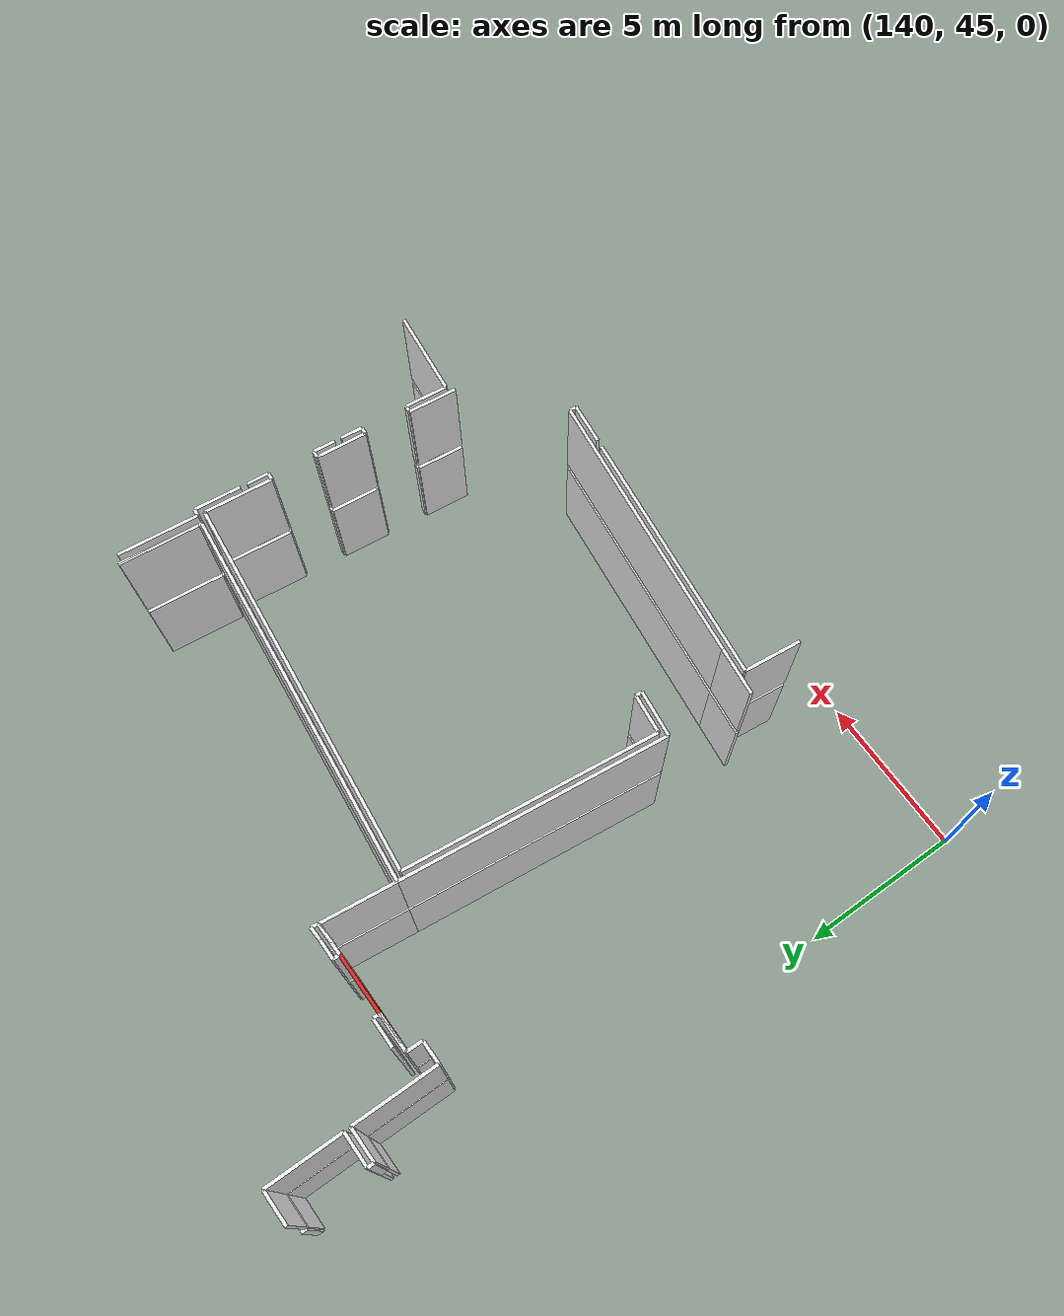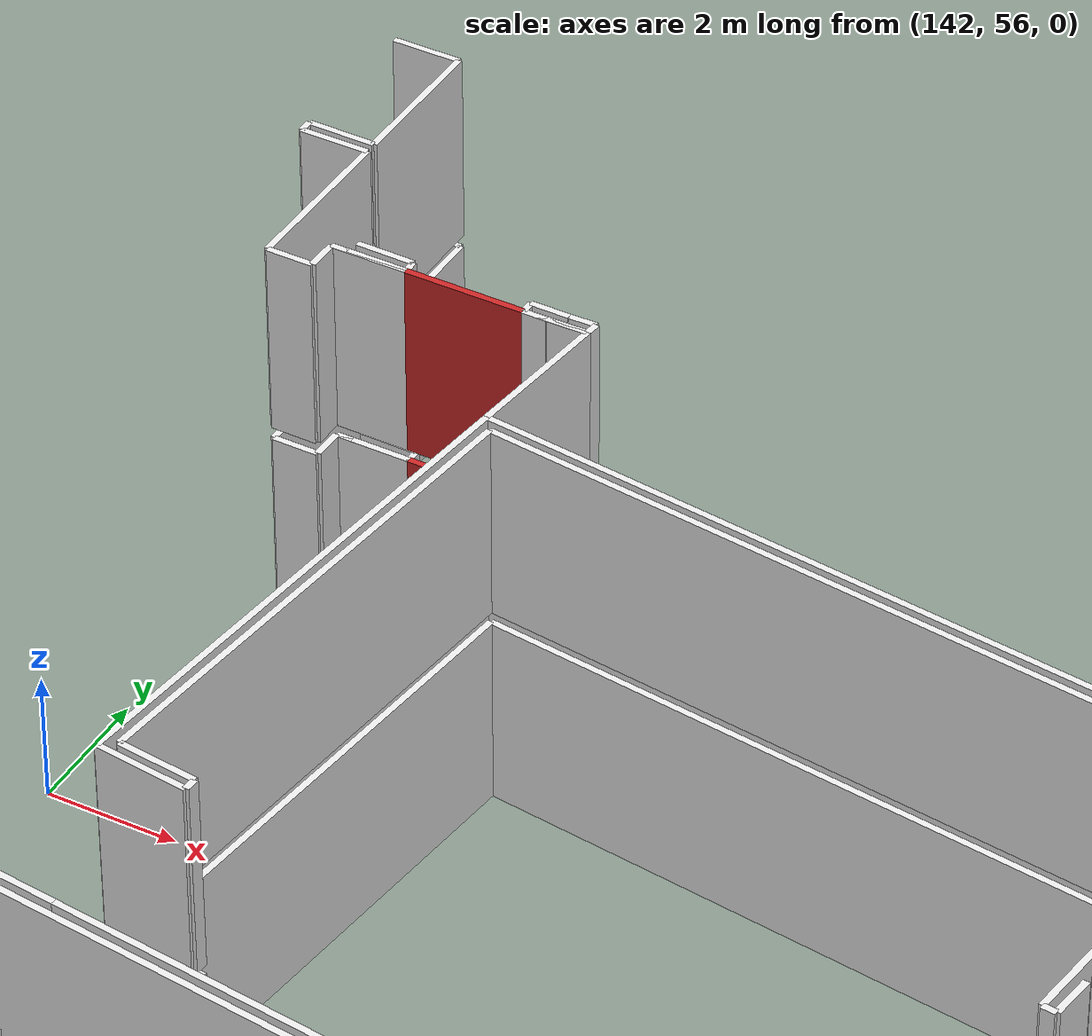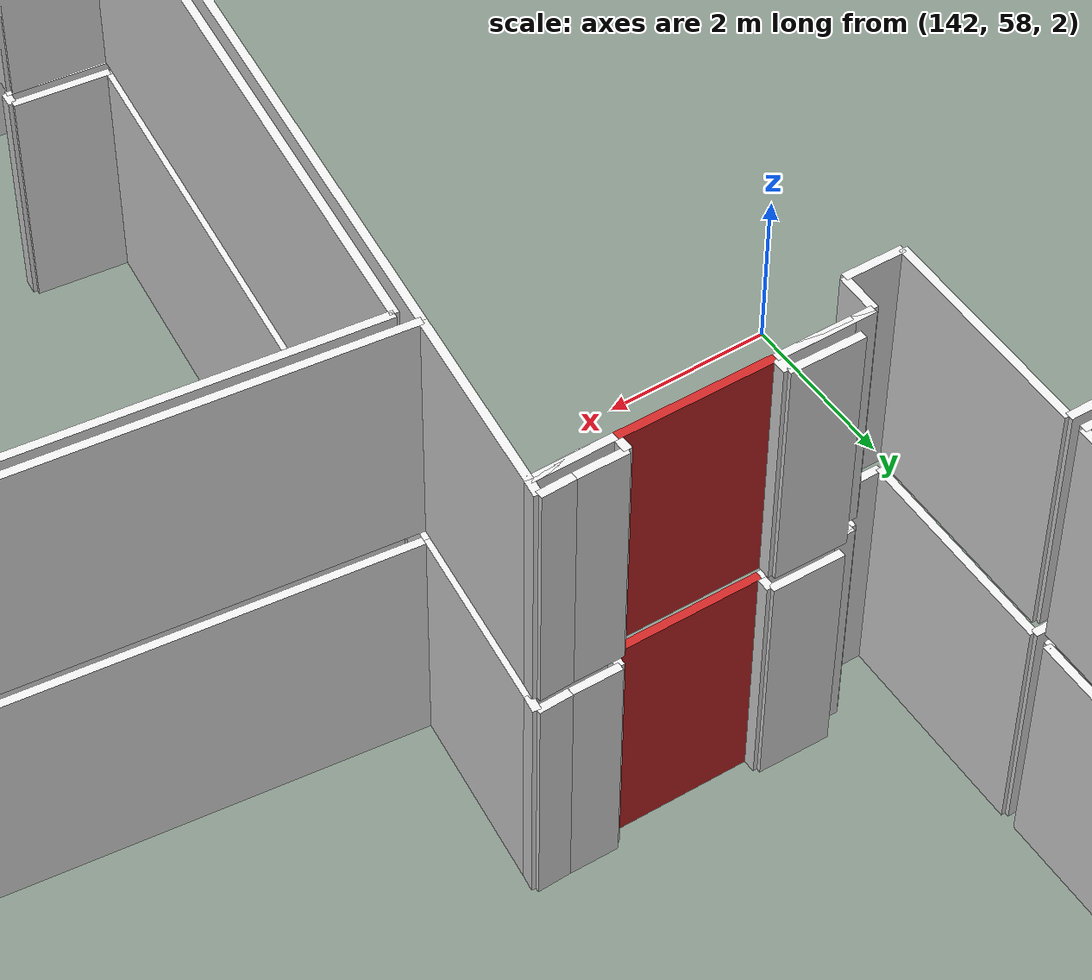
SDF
<sdf version="1.6">
 <world name="default">
  <model name="wall_145.4_61.4_0.0">
   <static>true</static>
   <pose>145.44999999998254 61.360000000102445 1.5 0 0 -0.011110653908026076</pose>
   <link name="link">
    <visual name="visual">
     <geometry><box><size>1.8001111076705336 0.1 3</size></box></geometry>
     <material>
      <script><uri>file://media/materials/scripts/gazebo.material</uri><name>Gazebo/Red</name></script>
     </material>
    </visual>
   </link>
  </model>
  <model name="wall_146.2_47.7_0.0">
   <static>true</static>
   <pose>146.20999999999185 47.675000000046566 1.5 0 0 1.4530010049136584</pose>
   <link name="link">
    <visual name="visual">
     <geometry><box><size>1.7017931718677757 0.1 3</size></box></geometry>
     <material>
      <script><uri>file://media/materials/scripts/gazebo.material</uri><name>Gazebo/White</name></script>
     </material>
    </visual>
   </link>
  </model>
  <model name="wall_150.1_48.1_0.0">
   <static>true</static>
   <pose>150.08499999999185 48.06499999994412 1.5 0 0 -0.11995117374483057</pose>
   <link name="link">
    <visual name="visual">
     <geometry><box><size>7.604643318400634 0.1 3</size></box></geometry>
     <material>
      <script><uri>file://media/materials/scripts/gazebo.material</uri><name>Gazebo/White</name></script>
     </material>
    </visual>
   </link>
  </model>
  <model name="wall_155.3_47.5_0.0">
   <static>true</static>
   <pose>155.27000000001863 47.54000000003725 1.5 0 0 1.4711276743037347</pose>
   <link name="link">
    <visual name="visual">
     <geometry><box><size>0.20099751260961132 0.1 3</size></box></geometry>
     <material>
      <script><uri>file://media/materials/scripts/gazebo.material</uri><name>Gazebo/White</name></script>
     </material>
    </visual>
   </link>
  </model>
  <model name="wall_151.2_48.1_0.0">
   <static>true</static>
   <pose>151.21000000002095 48.13000000012107 1.5 0 0 3.021776205795211</pose>
   <link name="link">
    <visual name="visual">
     <geometry><box><size>8.198780397119496 0.1 3</size></box></geometry>
     <material>
      <script><uri>file://media/materials/scripts/gazebo.material</uri><name>Gazebo/White</name></script>
     </material>
    </visual>
   </link>
  </model>
  <model name="wall_147.5_51.2_0.0">
   <static>true</static>
   <pose>147.45000000001164 51.175000000046566 1.5 0 0 1.4659193879370842</pose>
   <link name="link">
    <visual name="visual">
     <geometry><box><size>0.19104973169180559 0.1 3</size></box></geometry>
     <material>
      <script><uri>file://media/materials/scripts/gazebo.material</uri><name>Gazebo/White</name></script>
     </material>
    </visual>
   </link>
  </model>
  <model name="wall_146.9_51.3_0.0">
   <static>true</static>
   <pose>146.88000000000466 51.34000000008382 1.5 0 0 3.0214839179154356</pose>
   <link name="link">
    <visual name="visual">
     <geometry><box><size>1.1684177335662667 0.1 3</size></box></geometry>
     <material>
      <script><uri>file://media/materials/scripts/gazebo.material</uri><name>Gazebo/White</name></script>
     </material>
    </visual>
   </link>
  </model>
  <model name="wall_146.8_55.2_0.0">
   <static>true</static>
   <pose>146.75500000000466 55.16500000003725 1.5 0 0 1.4502124243818328</pose>
   <link name="link">
    <visual name="visual">
     <geometry><box><size>7.564932253279079 0.1 3</size></box></geometry>
     <material>
      <script><uri>file://media/materials/scripts/gazebo.material</uri><name>Gazebo/White</name></script>
     </material>
    </visual>
   </link>
  </model>
  <model name="wall_152.9_58.2_0.0">
   <static>true</static>
   <pose>152.92500000001746 58.22999999998137 1.5 0 0 -0.12015333859032509</pose>
   <link name="link">
    <visual name="visual">
     <geometry><box><size>11.513005689199145 0.1 3</size></box></geometry>
     <material>
      <script><uri>file://media/materials/scripts/gazebo.material</uri><name>Gazebo/White</name></script>
     </material>
    </visual>
   </link>
  </model>
  <model name="wall_158.5_56.5_0.0">
   <static>true</static>
   <pose>158.51500000001397 56.53000000002794 1.5 0 0 -1.6939325529007196</pose>
   <link name="link">
    <visual name="visual">
     <geometry><box><size>2.0354115063237828 0.1 3</size></box></geometry>
     <material>
      <script><uri>file://media/materials/scripts/gazebo.material</uri><name>Gazebo/White</name></script>
     </material>
    </visual>
   </link>
  </model>
  <model name="wall_158.5_55.5_0.0">
   <static>true</static>
   <pose>158.49499999999534 55.50500000012107 1.5 0 0 -0.14189705367284136</pose>
   <link name="link">
    <visual name="visual">
     <geometry><box><size>0.2121320342901098 0.1 3</size></box></geometry>
     <material>
      <script><uri>file://media/materials/scripts/gazebo.material</uri><name>Gazebo/White</name></script>
     </material>
    </visual>
   </link>
  </model>
  <model name="wall_158.3_54.1_0.0">
   <static>true</static>
   <pose>158.3299999999872 54.11999999987893 1.5 0 0 3.0419240010121844</pose>
   <link name="link">
    <visual name="visual">
     <geometry><box><size>0.20099751243585498 0.1 3</size></box></geometry>
     <material>
      <script><uri>file://media/materials/scripts/gazebo.material</uri><name>Gazebo/White</name></script>
     </material>
    </visual>
   </link>
  </model>
  <model name="wall_158.1_53.4_0.0">
   <static>true</static>
   <pose>158.13999999998487 53.389999999897555 1.5 0 0 -1.6918235466009592</pose>
   <link name="link">
    <visual name="visual">
     <geometry><box><size>1.4909057649436974 0.1 3</size></box></geometry>
     <material>
      <script><uri>file://media/materials/scripts/gazebo.material</uri><name>Gazebo/White</name></script>
     </material>
    </visual>
   </link>
  </model>
  <model name="wall_158.1_52.6_0.0">
   <static>true</static>
   <pose>158.14999999999418 52.639999999897555 1.5 0 0 -0.09966865257760905</pose>
   <link name="link">
    <visual name="visual">
     <geometry><box><size>0.20099751243585498 0.1 3</size></box></geometry>
     <material>
      <script><uri>file://media/materials/scripts/gazebo.material</uri><name>Gazebo/White</name></script>
     </material>
    </visual>
   </link>
  </model>
  <model name="wall_158.0_51.3_0.0">
   <static>true</static>
   <pose>157.98500000001513 51.26000000000931 1.5 0 0 3.0367157147638757</pose>
   <link name="link">
    <visual name="visual">
     <geometry><box><size>0.19104973174969345 0.1 3</size></box></geometry>
     <material>
      <script><uri>file://media/materials/scripts/gazebo.material</uri><name>Gazebo/White</name></script>
     </material>
    </visual>
   </link>
  </model>
  <model name="wall_157.8_50.6_0.0">
   <static>true</static>
   <pose>157.80000000001746 50.55499999993481 1.5 0 0 -1.6960119063078065</pose>
   <link name="link">
    <visual name="visual">
     <geometry><box><size>1.4412841498042397 0.1 3</size></box></geometry>
     <material>
      <script><uri>file://media/materials/scripts/gazebo.material</uri><name>Gazebo/White</name></script>
     </material>
    </visual>
   </link>
  </model>
  <model name="wall_158.0_50.6_0.0">
   <static>true</static>
   <pose>158.00500000000466 50.62999999988824 1.5 0 0 -1.6911791475924711</pose>
   <link name="link">
    <visual name="visual">
     <geometry><box><size>1.2490396313013081 0.1 3</size></box></geometry>
     <material>
      <script><uri>file://media/materials/scripts/gazebo.material</uri><name>Gazebo/White</name></script>
     </material>
    </visual>
   </link>
  </model>
  <model name="wall_159.2_49.9_0.0">
   <static>true</static>
   <pose>159.1699999999837 49.86499999999069 1.5 0 0 -0.11640682593514659</pose>
   <link name="link">
    <visual name="visual">
     <geometry><box><size>2.4968980755447623 0.1 3</size></box></geometry>
     <material>
      <script><uri>file://media/materials/scripts/gazebo.material</uri><name>Gazebo/White</name></script>
     </material>
    </visual>
   </link>
  </model>
  <model name="wall_158.3_52.9_0.0">
   <static>true</static>
   <pose>158.29000000000815 52.949999999953434 1.5 0 0 -1.695151321341658</pose>
   <link name="link">
    <visual name="visual">
     <geometry><box><size>0.6449806199952839 0.1 3</size></box></geometry>
     <material>
      <script><uri>file://media/materials/scripts/gazebo.material</uri><name>Gazebo/White</name></script>
     </material>
    </visual>
   </link>
  </model>
  <model name="wall_158.8_57.0_0.0">
   <static>true</static>
   <pose>158.7850000000035 57.03000000002794 1.5 0 0 1.4482254517181363</pose>
   <link name="link">
    <visual name="visual">
     <geometry><box><size>1.390431588022665 0.1 3</size></box></geometry>
     <material>
      <script><uri>file://media/materials/scripts/gazebo.material</uri><name>Gazebo/White</name></script>
     </material>
    </visual>
   </link>
  </model>
  <model name="wall_158.8_57.7_0.0">
   <static>true</static>
   <pose>158.76499999998487 57.730000000214204 1.5 0 0 3.0466409471685547</pose>
   <link name="link">
    <visual name="visual">
     <geometry><box><size>0.21095023111991618 0.1 3</size></box></geometry>
     <material>
      <script><uri>file://media/materials/scripts/gazebo.material</uri><name>Gazebo/White</name></script>
     </material>
    </visual>
   </link>
  </model>
  <model name="wall_158.8_58.9_0.0">
   <static>true</static>
   <pose>158.80499999999302 58.93000000016764 1.5 0 0 1.4495453057038894</pose>
   <link name="link">
    <visual name="visual">
     <geometry><box><size>2.3976029695280316 0.1 3</size></box></geometry>
     <material>
      <script><uri>file://media/materials/scripts/gazebo.material</uri><name>Gazebo/White</name></script>
     </material>
    </visual>
   </link>
  </model>
  <model name="wall_158.6_55.8_0.0">
   <static>true</static>
   <pose>158.6349999999802 55.81500000017695 1.5 0 0 -1.6780751824691755</pose>
   <link name="link">
    <visual name="visual">
     <geometry><box><size>0.6537583650553972 0.1 3</size></box></geometry>
     <material>
      <script><uri>file://media/materials/scripts/gazebo.material</uri><name>Gazebo/White</name></script>
     </material>
    </visual>
   </link>
  </model>
  <model name="wall_158.4_53.8_0.0">
   <static>true</static>
   <pose>158.38999999998487 53.79000000003725 1.5 0 0 -1.6951513214312084</pose>
   <link name="link">
    <visual name="visual">
     <geometry><box><size>0.6449806195332185 0.1 3</size></box></geometry>
     <material>
      <script><uri>file://media/materials/scripts/gazebo.material</uri><name>Gazebo/White</name></script>
     </material>
    </visual>
   </link>
  </model>
  <model name="wall_154.7_47.5_0.0">
   <static>true</static>
   <pose>154.6600000000035 47.51000000000931 1.5 0 0 -0.11614162698606886</pose>
   <link name="link">
    <visual name="visual">
     <geometry><box><size>1.2081390648697887 0.1 3</size></box></geometry>
     <material>
      <script><uri>file://media/materials/scripts/gazebo.material</uri><name>Gazebo/White</name></script>
     </material>
    </visual>
   </link>
  </model>
  <model name="wall_142.2_63.7_0.0">
   <static>true</static>
   <pose>142.2049999999872 63.670000000158325 1.5 0 0 -0.01941503592096556</pose>
   <link name="link">
    <visual name="visual">
     <geometry><box><size>1.0301941564279975 0.1 3</size></box></geometry>
     <material>
      <script><uri>file://media/materials/scripts/gazebo.material</uri><name>Gazebo/White</name></script>
     </material>
    </visual>
   </link>
  </model>
  <model name="wall_142.7_64.8_0.0">
   <static>true</static>
   <pose>142.73499999998603 64.81000000005588 1.5 0 0 1.5577535881510873</pose>
   <link name="link">
    <visual name="visual">
     <geometry><box><size>2.3001956436670468 0.1 3</size></box></geometry>
     <material>
      <script><uri>file://media/materials/scripts/gazebo.material</uri><name>Gazebo/White</name></script>
     </material>
    </visual>
   </link>
  </model>
  <model name="wall_142.2_66.0_0.0">
   <static>true</static>
   <pose>142.23000000001048 65.96500000008382 1.5 0 0 3.131977565057088</pose>
   <link name="link">
    <visual name="visual">
     <geometry><box><size>1.0400480757932573 0.1 3</size></box></geometry>
     <material>
      <script><uri>file://media/materials/scripts/gazebo.material</uri><name>Gazebo/White</name></script>
     </material>
    </visual>
   </link>
  </model>
  <model name="wall_141.7_66.1_0.0">
   <static>true</static>
   <pose>141.7149999999965 66.06500000017695 1.5 0 0 1.5182132654251468</pose>
   <link name="link">
    <visual name="visual">
     <geometry><box><size>0.19026297584603252 0.1 3</size></box></geometry>
     <material>
      <script><uri>file://media/materials/scripts/gazebo.material</uri><name>Gazebo/White</name></script>
     </material>
    </visual>
   </link>
  </model>
  <model name="wall_146.5_61.3_0.0">
   <static>true</static>
   <pose>146.5349999999744 61.34499999997206 1.5 0 0 -0.02702044984156988</pose>
   <link name="link">
    <visual name="visual">
     <geometry><box><size>0.37013511046832204 0.1 3</size></box></geometry>
     <material>
      <script><uri>file://media/materials/scripts/gazebo.material</uri><name>Gazebo/White</name></script>
     </material>
    </visual>
   </link>
  </model>
  <model name="wall_147.0_61.3_0.0">
   <static>true</static>
   <pose>147.01499999998487 61.34499999997206 1.5 0 0 0.016947530215964846</pose>
   <link name="link">
    <visual name="visual">
     <geometry><box><size>0.5900847397069884 0.1 3</size></box></geometry>
     <material>
      <script><uri>file://media/materials/scripts/gazebo.material</uri><name>Gazebo/White</name></script>
     </material>
    </visual>
   </link>
  </model>
  <model name="wall_147.2_60.2_0.0">
   <static>true</static>
   <pose>147.17499999998836 60.24500000011176 1.5 0 0 -1.6923658132359836</pose>
   <link name="link">
    <visual name="visual">
     <geometry><box><size>2.226432123341154 0.1 3</size></box></geometry>
     <material>
      <script><uri>file://media/materials/scripts/gazebo.material</uri><name>Gazebo/White</name></script>
     </material>
    </visual>
   </link>
  </model>
  <model name="wall_146.6_55.2_0.0">
   <static>true</static>
   <pose>146.55999999999767 55.19500000006519 1.5 0 0 -1.6918741795088168</pose>
   <link name="link">
    <visual name="visual">
     <geometry><box><size>7.9481884729783525 0.1 3</size></box></geometry>
     <material>
      <script><uri>file://media/materials/scripts/gazebo.material</uri><name>Gazebo/White</name></script>
     </material>
    </visual>
   </link>
  </model>
  <model name="wall_146.8_51.2_0.0">
   <static>true</static>
   <pose>146.7600000000093 51.16500000003725 1.5 0 0 -0.12435499449408483</pose>
   <link name="link">
    <visual name="visual">
     <geometry><box><size>1.37058381718765 0.1 3</size></box></geometry>
     <material>
      <script><uri>file://media/materials/scripts/gazebo.material</uri><name>Gazebo/White</name></script>
     </material>
    </visual>
   </link>
  </model>
  <model name="wall_146.4_48.7_0.0">
   <static>true</static>
   <pose>146.42500000001746 48.705000000074506 1.5 0 0 3.0232668711350636</pose>
   <link name="link">
    <visual name="visual">
     <geometry><box><size>1.440069442754304 0.1 3</size></box></geometry>
     <material>
      <script><uri>file://media/materials/scripts/gazebo.material</uri><name>Gazebo/White</name></script>
     </material>
    </visual>
   </link>
  </model>
  <model name="wall_142.2_63.5_0.0">
   <static>true</static>
   <pose>142.20999999999185 63.47500000009313 1.5 0 0 -0.00961508808499551</pose>
   <link name="link">
    <visual name="visual">
     <geometry><box><size>1.04004807578878 0.1 3</size></box></geometry>
     <material>
      <script><uri>file://media/materials/scripts/gazebo.material</uri><name>Gazebo/White</name></script>
     </material>
    </visual>
   </link>
  </model>
  <model name="wall_142.7_62.2_0.0">
   <static>true</static>
   <pose>142.70999999999185 62.18500000005588 1.5 0 0 -1.5863592725219522</pose>
   <link name="link">
    <visual name="visual">
     <geometry><box><size>2.570311265494933 0.1 3</size></box></geometry>
     <material>
      <script><uri>file://media/materials/scripts/gazebo.material</uri><name>Gazebo/White</name></script>
     </material>
    </visual>
   </link>
  </model>
  <model name="wall_143.0_60.9_0.0">
   <static>true</static>
   <pose>143.04000000000815 60.89500000001863 1.5 0 0 -0.014284742267913651</pose>
   <link name="link">
    <visual name="visual">
     <geometry><box><size>0.7000714249359331 0.1 3</size></box></geometry>
     <material>
      <script><uri>file://media/materials/scripts/gazebo.material</uri><name>Gazebo/White</name></script>
     </material>
    </visual>
   </link>
  </model>
  <model name="wall_143.4_61.1_0.0">
   <static>true</static>
   <pose>143.39500000001863 61.13500000000931 1.5 0 0 1.550390996079279</pose>
   <link name="link">
    <visual name="visual">
     <geometry><box><size>0.4901020299518104 0.1 3</size></box></geometry>
     <material>
      <script><uri>file://media/materials/scripts/gazebo.material</uri><name>Gazebo/White</name></script>
     </material>
    </visual>
   </link>
  </model>
  <model name="wall_143.5_61.4_0.0">
   <static>true</static>
   <pose>143.52500000002328 61.37999999988824 1.5 0 0 0.0</pose>
   <link name="link">
    <visual name="visual">
     <geometry><box><size>0.25 0.1 3</size></box></geometry>
     <material>
      <script><uri>file://media/materials/scripts/gazebo.material</uri><name>Gazebo/White</name></script>
     </material>
    </visual>
   </link>
  </model>
  <model name="wall_144.1_61.4_0.0">
   <static>true</static>
   <pose>144.10000000000582 61.375 1.5 0 0 -0.011110653649716558</pose>
   <link name="link">
    <visual name="visual">
     <geometry><box><size>0.9000555538035779 0.1 3</size></box></geometry>
     <material>
      <script><uri>file://media/materials/scripts/gazebo.material</uri><name>Gazebo/White</name></script>
     </material>
    </visual>
   </link>
  </model>
  <model name="wall_158.5_59.1_0.0">
   <static>true</static>
   <pose>158.5450000000128 59.06000000005588 1.5 0 0 -1.6930647307080706</pose>
   <link name="link">
    <visual name="visual">
     <geometry><box><size>2.377751038601466 0.1 3</size></box></geometry>
     <material>
      <script><uri>file://media/materials/scripts/gazebo.material</uri><name>Gazebo/White</name></script>
     </material>
    </visual>
   </link>
  </model>
  <model name="wall_158.4_57.8_0.0">
   <static>true</static>
   <pose>158.39500000001863 57.829999999841675 1.5 0 0 -1.6704649792860586</pose>
   <link name="link">
    <visual name="visual">
     <geometry><box><size>0.10049875630480566 0.1 3</size></box></geometry>
     <material>
      <script><uri>file://media/materials/scripts/gazebo.material</uri><name>Gazebo/White</name></script>
     </material>
    </visual>
   </link>
  </model>
  <model name="wall_152.7_58.5_0.0">
   <static>true</static>
   <pose>152.7149999999965 58.45999999996275 1.5 0 0 3.022337441191368</pose>
   <link name="link">
    <visual name="visual">
     <geometry><box><size>11.431189789418454 0.1 3</size></box></geometry>
     <material>
      <script><uri>file://media/materials/scripts/gazebo.material</uri><name>Gazebo/White</name></script>
     </material>
    </visual>
   </link>
  </model>
  <model name="wall_147.3_61.4_0.0">
   <static>true</static>
   <pose>147.32500000001164 61.449999999953434 1.5 0 0 1.4219063788438384</pose>
   <link name="link">
    <visual name="visual">
     <geometry><box><size>0.2022374838894058 0.1 3</size></box></geometry>
     <material>
      <script><uri>file://media/materials/scripts/gazebo.material</uri><name>Gazebo/White</name></script>
     </material>
    </visual>
   </link>
  </model>
  <model name="wall_147.1_61.5_0.0">
   <static>true</static>
   <pose>147.14000000001397 61.544999999925494 1.5 0 0 -3.116597860530772</pose>
   <link name="link">
    <visual name="visual">
     <geometry><box><size>0.40012498049254075 0.1 3</size></box></geometry>
     <material>
      <script><uri>file://media/materials/scripts/gazebo.material</uri><name>Gazebo/White</name></script>
     </material>
    </visual>
   </link>
  </model>
  <model name="wall_146.6_61.5_0.0">
   <static>true</static>
   <pose>146.64499999998952 61.544999999925494 1.5 0 0 3.1246451241628583</pose>
   <link name="link">
    <visual name="visual">
     <geometry><box><size>0.590084739699097 0.1 3</size></box></geometry>
     <material>
      <script><uri>file://media/materials/scripts/gazebo.material</uri><name>Gazebo/White</name></script>
     </material>
    </visual>
   </link>
  </model>
  <model name="wall_146.3_61.4_0.0">
   <static>true</static>
   <pose>146.34999999997672 61.449999999953434 1.5 0 0 -1.5707963267948966</pose>
   <link name="link">
    <visual name="visual">
     <geometry><box><size>0.19999999972060323 0.1 3</size></box></geometry>
     <material>
      <script><uri>file://media/materials/scripts/gazebo.material</uri><name>Gazebo/White</name></script>
     </material>
    </visual>
   </link>
  </model>
  <model name="wall_144.5_61.5_0.0">
   <static>true</static>
   <pose>144.54999999998836 61.46999999997206 1.5 0 0 1.5707963267948966</pose>
   <link name="link">
    <visual name="visual">
     <geometry><box><size>0.19999999972060323 0.1 3</size></box></geometry>
     <material>
      <script><uri>file://media/materials/scripts/gazebo.material</uri><name>Gazebo/White</name></script>
     </material>
    </visual>
   </link>
  </model>
  <model name="wall_144.1_61.6_0.0">
   <static>true</static>
   <pose>144.1149999999907 61.579999999841675 1.5 0 0 3.1186081961268197</pose>
   <link name="link">
    <visual name="visual">
     <geometry><box><size>0.8702298546893473 0.1 3</size></box></geometry>
     <material>
      <script><uri>file://media/materials/scripts/gazebo.material</uri><name>Gazebo/White</name></script>
     </material>
    </visual>
   </link>
  </model>
  <model name="wall_144.0_61.4_0.0">
   <static>true</static>
   <pose>143.97500000000582 61.375 1.5 0 0 -0.008695432817694347</pose>
   <link name="link">
    <visual name="visual">
     <geometry><box><size>1.1500434774021384 0.1 3</size></box></geometry>
     <material>
      <script><uri>file://media/materials/scripts/gazebo.material</uri><name>Gazebo/White</name></script>
     </material>
    </visual>
   </link>
  </model>
  <model name="wall_146.8_61.4_0.0">
   <static>true</static>
   <pose>146.8299999999872 61.35000000009313 1.5 0 0 0.0</pose>
   <link name="link">
    <visual name="visual">
     <geometry><box><size>0.9600000000209548 0.1 3</size></box></geometry>
     <material>
      <script><uri>file://media/materials/scripts/gazebo.material</uri><name>Gazebo/White</name></script>
     </material>
    </visual>
   </link>
  </model>
  <model name="wall_158.5_59.0_0.0">
   <static>true</static>
   <pose>158.54000000000815 59.01000000000931 1.5 0 0 1.4494443262497225</pose>
   <link name="link">
    <visual name="visual">
     <geometry><box><size>2.4782251717914545 0.1 3</size></box></geometry>
     <material>
      <script><uri>file://media/materials/scripts/gazebo.material</uri><name>Gazebo/White</name></script>
     </material>
    </visual>
   </link>
  </model>
  <model name="wall_145.4_61.4_3.2">
   <static>true</static>
   <pose>145.44999999998254 61.360000000102445 4.7 0 0 -0.011110653908026076</pose>
   <link name="link">
    <visual name="visual">
     <geometry><box><size>1.8001111076705336 0.1 3</size></box></geometry>
     <material>
      <script><uri>file://media/materials/scripts/gazebo.material</uri><name>Gazebo/Red</name></script>
     </material>
    </visual>
   </link>
  </model>
  <model name="wall_146.2_47.7_3.2">
   <static>true</static>
   <pose>146.20999999999185 47.675000000046566 4.7 0 0 1.4530010049136584</pose>
   <link name="link">
    <visual name="visual">
     <geometry><box><size>1.7017931718677757 0.1 3</size></box></geometry>
     <material>
      <script><uri>file://media/materials/scripts/gazebo.material</uri><name>Gazebo/White</name></script>
     </material>
    </visual>
   </link>
  </model>
  <model name="wall_150.1_48.1_3.2">
   <static>true</static>
   <pose>150.08499999999185 48.06499999994412 4.7 0 0 -0.11995117374483057</pose>
   <link name="link">
    <visual name="visual">
     <geometry><box><size>7.604643318400634 0.1 3</size></box></geometry>
     <material>
      <script><uri>file://media/materials/scripts/gazebo.material</uri><name>Gazebo/White</name></script>
     </material>
    </visual>
   </link>
  </model>
  <model name="wall_155.3_47.5_3.2">
   <static>true</static>
   <pose>155.27000000001863 47.54000000003725 4.7 0 0 1.4711276743037347</pose>
   <link name="link">
    <visual name="visual">
     <geometry><box><size>0.20099751260961132 0.1 3</size></box></geometry>
     <material>
      <script><uri>file://media/materials/scripts/gazebo.material</uri><name>Gazebo/White</name></script>
     </material>
    </visual>
   </link>
  </model>
  <model name="wall_151.2_48.1_3.2">
   <static>true</static>
   <pose>151.21000000002095 48.13000000012107 4.7 0 0 3.021776205795211</pose>
   <link name="link">
    <visual name="visual">
     <geometry><box><size>8.198780397119496 0.1 3</size></box></geometry>
     <material>
      <script><uri>file://media/materials/scripts/gazebo.material</uri><name>Gazebo/White</name></script>
     </material>
    </visual>
   </link>
  </model>
  <model name="wall_147.5_51.2_3.2">
   <static>true</static>
   <pose>147.45000000001164 51.175000000046566 4.7 0 0 1.4659193879370842</pose>
   <link name="link">
    <visual name="visual">
     <geometry><box><size>0.19104973169180559 0.1 3</size></box></geometry>
     <material>
      <script><uri>file://media/materials/scripts/gazebo.material</uri><name>Gazebo/White</name></script>
     </material>
    </visual>
   </link>
  </model>
  <model name="wall_146.9_51.3_3.2">
   <static>true</static>
   <pose>146.88000000000466 51.34000000008382 4.7 0 0 3.0214839179154356</pose>
   <link name="link">
    <visual name="visual">
     <geometry><box><size>1.1684177335662667 0.1 3</size></box></geometry>
     <material>
      <script><uri>file://media/materials/scripts/gazebo.material</uri><name>Gazebo/White</name></script>
     </material>
    </visual>
   </link>
  </model>
  <model name="wall_146.8_55.2_3.2">
   <static>true</static>
   <pose>146.75500000000466 55.16500000003725 4.7 0 0 1.4502124243818328</pose>
   <link name="link">
    <visual name="visual">
     <geometry><box><size>7.564932253279079 0.1 3</size></box></geometry>
     <material>
      <script><uri>file://media/materials/scripts/gazebo.material</uri><name>Gazebo/White</name></script>
     </material>
    </visual>
   </link>
  </model>
  <model name="wall_152.9_58.2_3.2">
   <static>true</static>
   <pose>152.92500000001746 58.22999999998137 4.7 0 0 -0.12015333859032509</pose>
   <link name="link">
    <visual name="visual">
     <geometry><box><size>11.513005689199145 0.1 3</size></box></geometry>
     <material>
      <script><uri>file://media/materials/scripts/gazebo.material</uri><name>Gazebo/White</name></script>
     </material>
    </visual>
   </link>
  </model>
  <model name="wall_158.5_56.5_3.2">
   <static>true</static>
   <pose>158.51500000001397 56.53000000002794 4.7 0 0 -1.6939325529007196</pose>
   <link name="link">
    <visual name="visual">
     <geometry><box><size>2.0354115063237828 0.1 3</size></box></geometry>
     <material>
      <script><uri>file://media/materials/scripts/gazebo.material</uri><name>Gazebo/White</name></script>
     </material>
    </visual>
   </link>
  </model>
  <model name="wall_158.5_55.5_3.2">
   <static>true</static>
   <pose>158.49499999999534 55.50500000012107 4.7 0 0 -0.14189705367284136</pose>
   <link name="link">
    <visual name="visual">
     <geometry><box><size>0.2121320342901098 0.1 3</size></box></geometry>
     <material>
      <script><uri>file://media/materials/scripts/gazebo.material</uri><name>Gazebo/White</name></script>
     </material>
    </visual>
   </link>
  </model>
  <model name="wall_158.3_54.1_3.2">
   <static>true</static>
   <pose>158.3299999999872 54.11999999987893 4.7 0 0 3.0419240010121844</pose>
   <link name="link">
    <visual name="visual">
     <geometry><box><size>0.20099751243585498 0.1 3</size></box></geometry>
     <material>
      <script><uri>file://media/materials/scripts/gazebo.material</uri><name>Gazebo/White</name></script>
     </material>
    </visual>
   </link>
  </model>
  <model name="wall_158.1_53.4_3.2">
   <static>true</static>
   <pose>158.13999999998487 53.389999999897555 4.7 0 0 -1.6918235466009592</pose>
   <link name="link">
    <visual name="visual">
     <geometry><box><size>1.4909057649436974 0.1 3</size></box></geometry>
     <material>
      <script><uri>file://media/materials/scripts/gazebo.material</uri><name>Gazebo/White</name></script>
     </material>
    </visual>
   </link>
  </model>
  <model name="wall_158.1_52.6_3.2">
   <static>true</static>
   <pose>158.14999999999418 52.639999999897555 4.7 0 0 -0.09966865257760905</pose>
   <link name="link">
    <visual name="visual">
     <geometry><box><size>0.20099751243585498 0.1 3</size></box></geometry>
     <material>
      <script><uri>file://media/materials/scripts/gazebo.material</uri><name>Gazebo/White</name></script>
     </material>
    </visual>
   </link>
  </model>
  <model name="wall_158.0_51.3_3.2">
   <static>true</static>
   <pose>157.98500000001513 51.26000000000931 4.7 0 0 3.0367157147638757</pose>
   <link name="link">
    <visual name="visual">
     <geometry><box><size>0.19104973174969345 0.1 3</size></box></geometry>
     <material>
      <script><uri>file://media/materials/scripts/gazebo.material</uri><name>Gazebo/White</name></script>
     </material>
    </visual>
   </link>
  </model>
  <model name="wall_157.8_50.6_3.2">
   <static>true</static>
   <pose>157.80000000001746 50.55499999993481 4.7 0 0 -1.6960119063078065</pose>
   <link name="link">
    <visual name="visual">
     <geometry><box><size>1.4412841498042397 0.1 3</size></box></geometry>
     <material>
      <script><uri>file://media/materials/scripts/gazebo.material</uri><name>Gazebo/White</name></script>
     </material>
    </visual>
   </link>
  </model>
  <model name="wall_158.0_50.6_3.2">
   <static>true</static>
   <pose>158.00500000000466 50.62999999988824 4.7 0 0 -1.6911791475924711</pose>
   <link name="link">
    <visual name="visual">
     <geometry><box><size>1.2490396313013081 0.1 3</size></box></geometry>
     <material>
      <script><uri>file://media/materials/scripts/gazebo.material</uri><name>Gazebo/White</name></script>
     </material>
    </visual>
   </link>
  </model>
  <model name="wall_159.2_49.9_3.2">
   <static>true</static>
   <pose>159.1699999999837 49.86499999999069 4.7 0 0 -0.11640682593514659</pose>
   <link name="link">
    <visual name="visual">
     <geometry><box><size>2.4968980755447623 0.1 3</size></box></geometry>
     <material>
      <script><uri>file://media/materials/scripts/gazebo.material</uri><name>Gazebo/White</name></script>
     </material>
    </visual>
   </link>
  </model>
  <model name="wall_158.3_52.9_3.2">
   <static>true</static>
   <pose>158.29000000000815 52.949999999953434 4.7 0 0 -1.695151321341658</pose>
   <link name="link">
    <visual name="visual">
     <geometry><box><size>0.6449806199952839 0.1 3</size></box></geometry>
     <material>
      <script><uri>file://media/materials/scripts/gazebo.material</uri><name>Gazebo/White</name></script>
     </material>
    </visual>
   </link>
  </model>
  <model name="wall_158.8_57.0_3.2">
   <static>true</static>
   <pose>158.7850000000035 57.03000000002794 4.7 0 0 1.4482254517181363</pose>
   <link name="link">
    <visual name="visual">
     <geometry><box><size>1.390431588022665 0.1 3</size></box></geometry>
     <material>
      <script><uri>file://media/materials/scripts/gazebo.material</uri><name>Gazebo/White</name></script>
     </material>
    </visual>
   </link>
  </model>
  <model name="wall_158.8_57.7_3.2">
   <static>true</static>
   <pose>158.76499999998487 57.730000000214204 4.7 0 0 3.0466409471685547</pose>
   <link name="link">
    <visual name="visual">
     <geometry><box><size>0.21095023111991618 0.1 3</size></box></geometry>
     <material>
      <script><uri>file://media/materials/scripts/gazebo.material</uri><name>Gazebo/White</name></script>
     </material>
    </visual>
   </link>
  </model>
  <model name="wall_158.8_58.9_3.2">
   <static>true</static>
   <pose>158.80499999999302 58.93000000016764 4.7 0 0 1.4495453057038894</pose>
   <link name="link">
    <visual name="visual">
     <geometry><box><size>2.3976029695280316 0.1 3</size></box></geometry>
     <material>
      <script><uri>file://media/materials/scripts/gazebo.material</uri><name>Gazebo/White</name></script>
     </material>
    </visual>
   </link>
  </model>
  <model name="wall_158.6_55.8_3.2">
   <static>true</static>
   <pose>158.6349999999802 55.81500000017695 4.7 0 0 -1.6780751824691755</pose>
   <link name="link">
    <visual name="visual">
     <geometry><box><size>0.6537583650553972 0.1 3</size></box></geometry>
     <material>
      <script><uri>file://media/materials/scripts/gazebo.material</uri><name>Gazebo/White</name></script>
     </material>
    </visual>
   </link>
  </model>
  <model name="wall_158.4_53.8_3.2">
   <static>true</static>
   <pose>158.38999999998487 53.79000000003725 4.7 0 0 -1.6951513214312084</pose>
   <link name="link">
    <visual name="visual">
     <geometry><box><size>0.6449806195332185 0.1 3</size></box></geometry>
     <material>
      <script><uri>file://media/materials/scripts/gazebo.material</uri><name>Gazebo/White</name></script>
     </material>
    </visual>
   </link>
  </model>
  <model name="wall_154.7_47.5_3.2">
   <static>true</static>
   <pose>154.6600000000035 47.51000000000931 4.7 0 0 -0.11614162698606886</pose>
   <link name="link">
    <visual name="visual">
     <geometry><box><size>1.2081390648697887 0.1 3</size></box></geometry>
     <material>
      <script><uri>file://media/materials/scripts/gazebo.material</uri><name>Gazebo/White</name></script>
     </material>
    </visual>
   </link>
  </model>
  <model name="wall_142.2_63.7_3.2">
   <static>true</static>
   <pose>142.2049999999872 63.670000000158325 4.7 0 0 -0.01941503592096556</pose>
   <link name="link">
    <visual name="visual">
     <geometry><box><size>1.0301941564279975 0.1 3</size></box></geometry>
     <material>
      <script><uri>file://media/materials/scripts/gazebo.material</uri><name>Gazebo/White</name></script>
     </material>
    </visual>
   </link>
  </model>
  <model name="wall_142.7_64.8_3.2">
   <static>true</static>
   <pose>142.73499999998603 64.81000000005588 4.7 0 0 1.5577535881510873</pose>
   <link name="link">
    <visual name="visual">
     <geometry><box><size>2.3001956436670468 0.1 3</size></box></geometry>
     <material>
      <script><uri>file://media/materials/scripts/gazebo.material</uri><name>Gazebo/White</name></script>
     </material>
    </visual>
   </link>
  </model>
  <model name="wall_142.2_66.0_3.2">
   <static>true</static>
   <pose>142.23000000001048 65.96500000008382 4.7 0 0 3.131977565057088</pose>
   <link name="link">
    <visual name="visual">
     <geometry><box><size>1.0400480757932573 0.1 3</size></box></geometry>
     <material>
      <script><uri>file://media/materials/scripts/gazebo.material</uri><name>Gazebo/White</name></script>
     </material>
    </visual>
   </link>
  </model>
  <model name="wall_146.5_61.3_3.2">
   <static>true</static>
   <pose>146.5349999999744 61.34499999997206 4.7 0 0 -0.02702044984156988</pose>
   <link name="link">
    <visual name="visual">
     <geometry><box><size>0.37013511046832204 0.1 3</size></box></geometry>
     <material>
      <script><uri>file://media/materials/scripts/gazebo.material</uri><name>Gazebo/White</name></script>
     </material>
    </visual>
   </link>
  </model>
  <model name="wall_147.0_61.3_3.2">
   <static>true</static>
   <pose>147.01499999998487 61.34499999997206 4.7 0 0 0.016947530215964846</pose>
   <link name="link">
    <visual name="visual">
     <geometry><box><size>0.5900847397069884 0.1 3</size></box></geometry>
     <material>
      <script><uri>file://media/materials/scripts/gazebo.material</uri><name>Gazebo/White</name></script>
     </material>
    </visual>
   </link>
  </model>
  <model name="wall_147.2_60.2_3.2">
   <static>true</static>
   <pose>147.17499999998836 60.24500000011176 4.7 0 0 -1.6923658132359836</pose>
   <link name="link">
    <visual name="visual">
     <geometry><box><size>2.226432123341154 0.1 3</size></box></geometry>
     <material>
      <script><uri>file://media/materials/scripts/gazebo.material</uri><name>Gazebo/White</name></script>
     </material>
    </visual>
   </link>
  </model>
  <model name="wall_146.6_55.2_3.2">
   <static>true</static>
   <pose>146.55999999999767 55.19500000006519 4.7 0 0 -1.6918741795088168</pose>
   <link name="link">
    <visual name="visual">
     <geometry><box><size>7.9481884729783525 0.1 3</size></box></geometry>
     <material>
      <script><uri>file://media/materials/scripts/gazebo.material</uri><name>Gazebo/White</name></script>
     </material>
    </visual>
   </link>
  </model>
  <model name="wall_146.8_51.2_3.2">
   <static>true</static>
   <pose>146.7600000000093 51.16500000003725 4.7 0 0 -0.12435499449408483</pose>
   <link name="link">
    <visual name="visual">
     <geometry><box><size>1.37058381718765 0.1 3</size></box></geometry>
     <material>
      <script><uri>file://media/materials/scripts/gazebo.material</uri><name>Gazebo/White</name></script>
     </material>
    </visual>
   </link>
  </model>
  <model name="wall_146.4_48.7_3.2">
   <static>true</static>
   <pose>146.42500000001746 48.705000000074506 4.7 0 0 3.0232668711350636</pose>
   <link name="link">
    <visual name="visual">
     <geometry><box><size>1.440069442754304 0.1 3</size></box></geometry>
     <material>
      <script><uri>file://media/materials/scripts/gazebo.material</uri><name>Gazebo/White</name></script>
     </material>
    </visual>
   </link>
  </model>
  <model name="wall_141.7_63.6_3.2">
   <static>true</static>
   <pose>141.69000000000233 63.580000000074506 4.7 0 0 -1.5707963267948966</pose>
   <link name="link">
    <visual name="visual">
     <geometry><box><size>0.20000000018626451 0.1 3</size></box></geometry>
     <material>
      <script><uri>file://media/materials/scripts/gazebo.material</uri><name>Gazebo/White</name></script>
     </material>
    </visual>
   </link>
  </model>
  <model name="wall_142.2_63.5_3.2">
   <static>true</static>
   <pose>142.20999999999185 63.47500000009313 4.7 0 0 -0.00961508808499551</pose>
   <link name="link">
    <visual name="visual">
     <geometry><box><size>1.04004807578878 0.1 3</size></box></geometry>
     <material>
      <script><uri>file://media/materials/scripts/gazebo.material</uri><name>Gazebo/White</name></script>
     </material>
    </visual>
   </link>
  </model>
  <model name="wall_142.7_62.2_3.2">
   <static>true</static>
   <pose>142.70999999999185 62.18500000005588 4.7 0 0 -1.5863592725219522</pose>
   <link name="link">
    <visual name="visual">
     <geometry><box><size>2.570311265494933 0.1 3</size></box></geometry>
     <material>
      <script><uri>file://media/materials/scripts/gazebo.material</uri><name>Gazebo/White</name></script>
     </material>
    </visual>
   </link>
  </model>
  <model name="wall_143.0_60.9_3.2">
   <static>true</static>
   <pose>143.04000000000815 60.89500000001863 4.7 0 0 -0.014284742267913651</pose>
   <link name="link">
    <visual name="visual">
     <geometry><box><size>0.7000714249359331 0.1 3</size></box></geometry>
     <material>
      <script><uri>file://media/materials/scripts/gazebo.material</uri><name>Gazebo/White</name></script>
     </material>
    </visual>
   </link>
  </model>
  <model name="wall_143.4_61.1_3.2">
   <static>true</static>
   <pose>143.39500000001863 61.13500000000931 4.7 0 0 1.550390996079279</pose>
   <link name="link">
    <visual name="visual">
     <geometry><box><size>0.4901020299518104 0.1 3</size></box></geometry>
     <material>
      <script><uri>file://media/materials/scripts/gazebo.material</uri><name>Gazebo/White</name></script>
     </material>
    </visual>
   </link>
  </model>
  <model name="wall_143.5_61.4_3.2">
   <static>true</static>
   <pose>143.52500000002328 61.37999999988824 4.7 0 0 0.0</pose>
   <link name="link">
    <visual name="visual">
     <geometry><box><size>0.25 0.1 3</size></box></geometry>
     <material>
      <script><uri>file://media/materials/scripts/gazebo.material</uri><name>Gazebo/White</name></script>
     </material>
    </visual>
   </link>
  </model>
  <model name="wall_144.1_61.4_3.2">
   <static>true</static>
   <pose>144.10000000000582 61.375 4.7 0 0 -0.011110653649716558</pose>
   <link name="link">
    <visual name="visual">
     <geometry><box><size>0.9000555538035779 0.1 3</size></box></geometry>
     <material>
      <script><uri>file://media/materials/scripts/gazebo.material</uri><name>Gazebo/White</name></script>
     </material>
    </visual>
   </link>
  </model>
  <model name="wall_158.5_59.1_3.2">
   <static>true</static>
   <pose>158.5450000000128 59.06000000005588 4.7 0 0 -1.6930647307080706</pose>
   <link name="link">
    <visual name="visual">
     <geometry><box><size>2.377751038601466 0.1 3</size></box></geometry>
     <material>
      <script><uri>file://media/materials/scripts/gazebo.material</uri><name>Gazebo/White</name></script>
     </material>
    </visual>
   </link>
  </model>
  <model name="wall_158.4_57.8_3.2">
   <static>true</static>
   <pose>158.39500000001863 57.829999999841675 4.7 0 0 -1.6704649792860586</pose>
   <link name="link">
    <visual name="visual">
     <geometry><box><size>0.10049875630480566 0.1 3</size></box></geometry>
     <material>
      <script><uri>file://media/materials/scripts/gazebo.material</uri><name>Gazebo/White</name></script>
     </material>
    </visual>
   </link>
  </model>
  <model name="wall_152.7_58.5_3.2">
   <static>true</static>
   <pose>152.7149999999965 58.45999999996275 4.7 0 0 3.022337441191368</pose>
   <link name="link">
    <visual name="visual">
     <geometry><box><size>11.431189789418454 0.1 3</size></box></geometry>
     <material>
      <script><uri>file://media/materials/scripts/gazebo.material</uri><name>Gazebo/White</name></script>
     </material>
    </visual>
   </link>
  </model>
  <model name="wall_147.3_61.4_3.2">
   <static>true</static>
   <pose>147.32500000001164 61.449999999953434 4.7 0 0 1.4219063788438384</pose>
   <link name="link">
    <visual name="visual">
     <geometry><box><size>0.2022374838894058 0.1 3</size></box></geometry>
     <material>
      <script><uri>file://media/materials/scripts/gazebo.material</uri><name>Gazebo/White</name></script>
     </material>
    </visual>
   </link>
  </model>
  <model name="wall_147.1_61.5_3.2">
   <static>true</static>
   <pose>147.14000000001397 61.544999999925494 4.7 0 0 -3.116597860530772</pose>
   <link name="link">
    <visual name="visual">
     <geometry><box><size>0.40012498049254075 0.1 3</size></box></geometry>
     <material>
      <script><uri>file://media/materials/scripts/gazebo.material</uri><name>Gazebo/White</name></script>
     </material>
    </visual>
   </link>
  </model>
  <model name="wall_146.6_61.5_3.2">
   <static>true</static>
   <pose>146.64499999998952 61.544999999925494 4.7 0 0 3.1246451241628583</pose>
   <link name="link">
    <visual name="visual">
     <geometry><box><size>0.590084739699097 0.1 3</size></box></geometry>
     <material>
      <script><uri>file://media/materials/scripts/gazebo.material</uri><name>Gazebo/White</name></script>
     </material>
    </visual>
   </link>
  </model>
  <model name="wall_146.3_61.4_3.2">
   <static>true</static>
   <pose>146.34999999997672 61.449999999953434 4.7 0 0 -1.5707963267948966</pose>
   <link name="link">
    <visual name="visual">
     <geometry><box><size>0.19999999972060323 0.1 3</size></box></geometry>
     <material>
      <script><uri>file://media/materials/scripts/gazebo.material</uri><name>Gazebo/White</name></script>
     </material>
    </visual>
   </link>
  </model>
  <model name="wall_144.5_61.5_3.2">
   <static>true</static>
   <pose>144.54999999998836 61.46999999997206 4.7 0 0 1.5707963267948966</pose>
   <link name="link">
    <visual name="visual">
     <geometry><box><size>0.19999999972060323 0.1 3</size></box></geometry>
     <material>
      <script><uri>file://media/materials/scripts/gazebo.material</uri><name>Gazebo/White</name></script>
     </material>
    </visual>
   </link>
  </model>
  <model name="wall_144.1_61.6_3.2">
   <static>true</static>
   <pose>144.1149999999907 61.579999999841675 4.7 0 0 3.1186081961268197</pose>
   <link name="link">
    <visual name="visual">
     <geometry><box><size>0.8702298546893473 0.1 3</size></box></geometry>
     <material>
      <script><uri>file://media/materials/scripts/gazebo.material</uri><name>Gazebo/White</name></script>
     </material>
    </visual>
   </link>
  </model>
  <model name="wall_144.0_61.4_3.2">
   <static>true</static>
   <pose>143.97500000000582 61.375 4.7 0 0 -0.008695432817694347</pose>
   <link name="link">
    <visual name="visual">
     <geometry><box><size>1.1500434774021384 0.1 3</size></box></geometry>
     <material>
      <script><uri>file://media/materials/scripts/gazebo.material</uri><name>Gazebo/White</name></script>
     </material>
    </visual>
   </link>
  </model>
  <model name="wall_146.8_61.4_3.2">
   <static>true</static>
   <pose>146.8299999999872 61.35000000009313 4.7 0 0 0.0</pose>
   <link name="link">
    <visual name="visual">
     <geometry><box><size>0.9600000000209548 0.1 3</size></box></geometry>
     <material>
      <script><uri>file://media/materials/scripts/gazebo.material</uri><name>Gazebo/White</name></script>
     </material>
    </visual>
   </link>
  </model>
  <model name="wall_158.5_59.0_3.2">
   <static>true</static>
   <pose>158.54000000000815 59.01000000000931 4.7 0 0 1.4494443262497225</pose>
   <link name="link">
    <visual name="visual">
     <geometry><box><size>2.4782251717914545 0.1 3</size></box></geometry>
     <material>
      <script><uri>file://media/materials/scripts/gazebo.material</uri><name>Gazebo/White</name></script>
     </material>
    </visual>
   </link>
  </model>
 </world>
</sdf>
